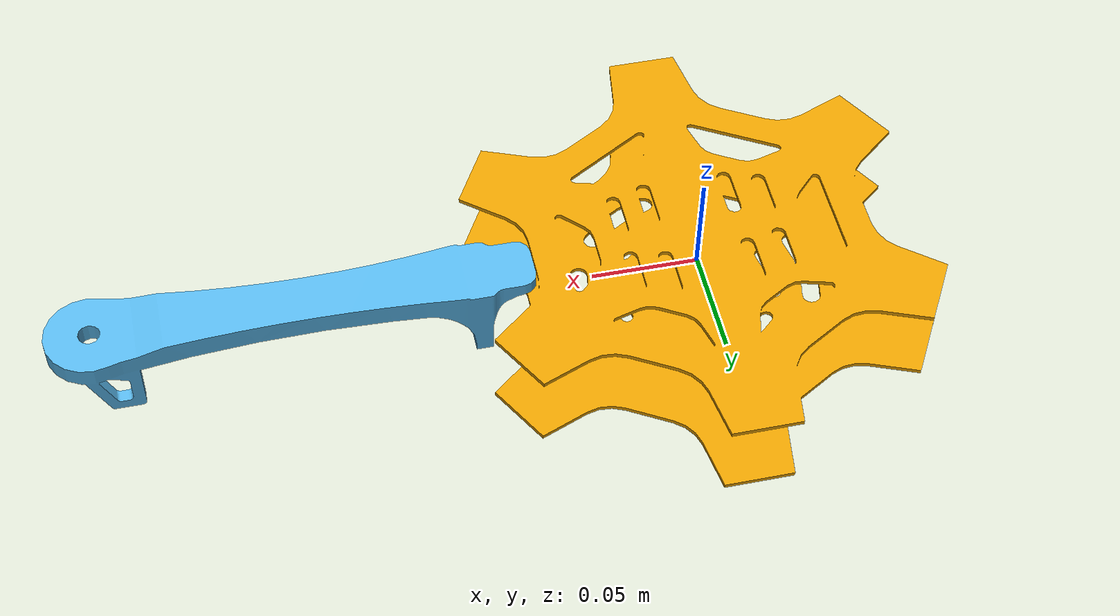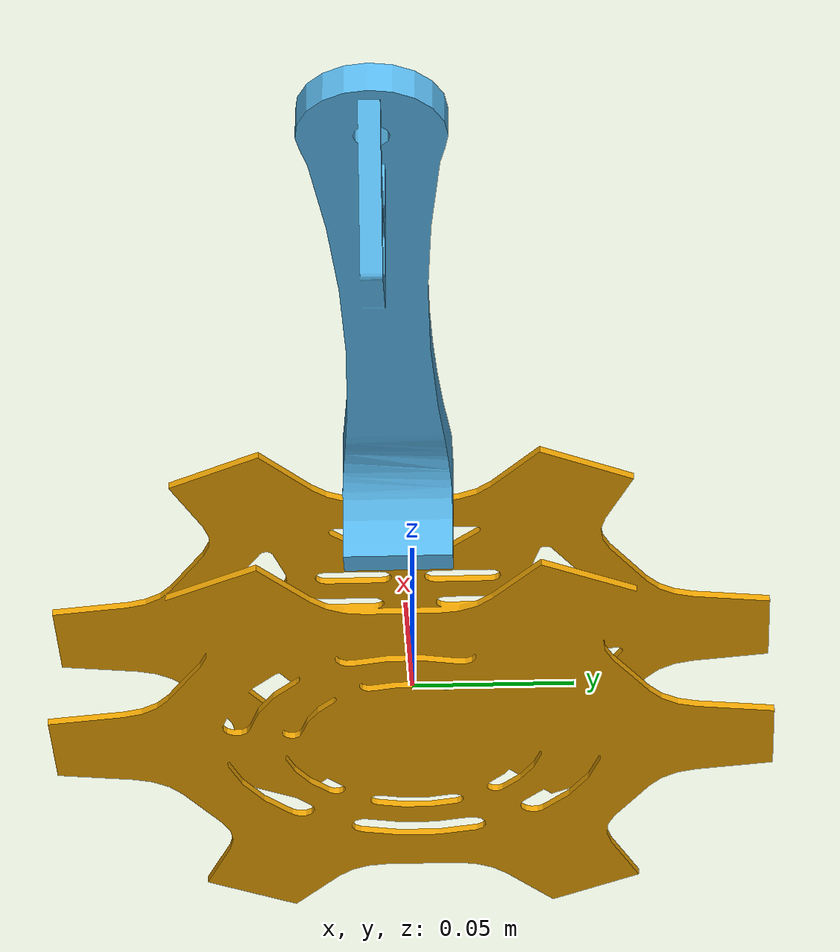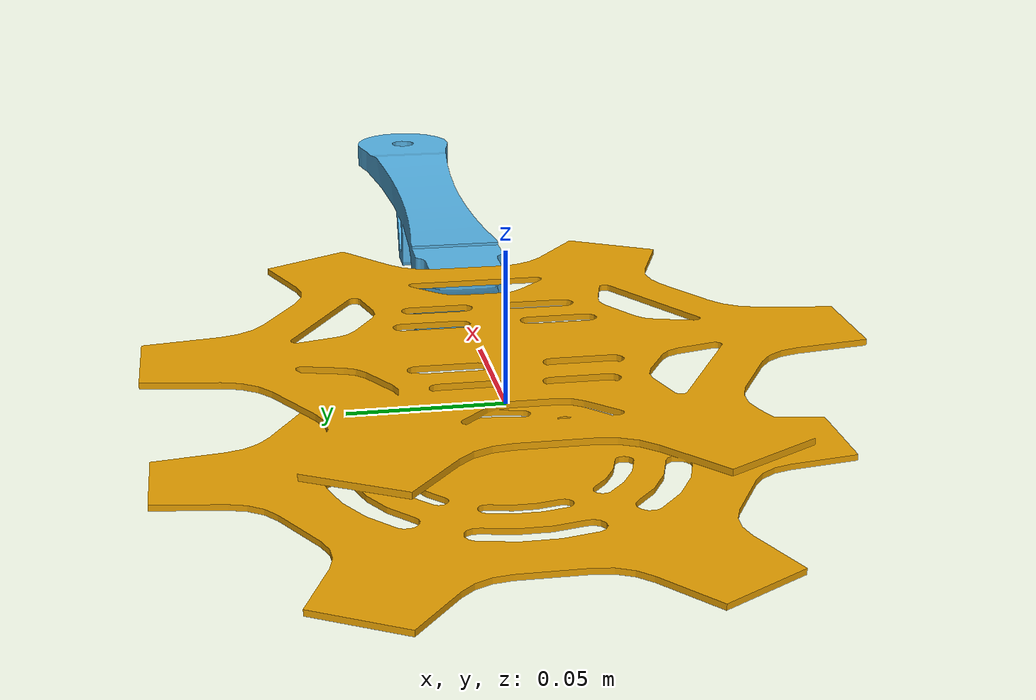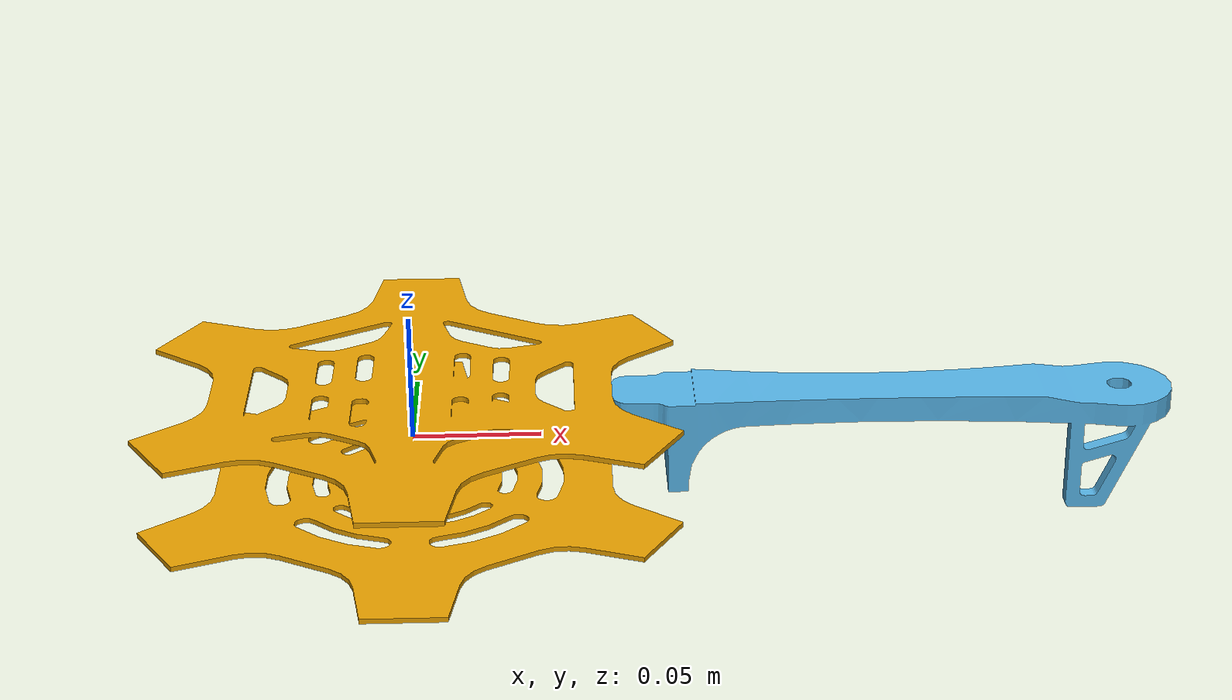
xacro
<?xml version="1.0"?>
<robot xmlns:xacro="http://ros.org/wiki/xacro" name="copter_ray">

<!-- Build ray -->

<link name="frame">
		<collision>
			<origin	xyz="0 0 0" rpy="0 0 0" />
			<geometry>
				<cylinder radius="0.115" length="0.045"/>
			</geometry>
		</collision>
    		<visual>
      			<origin	xyz="0 0 0" rpy="0 0 0" />
      			<geometry>
				<mesh filename="package://copter_description/meshes/stl/frame.STL" />
      			</geometry>
    		</visual>
		<inertial>
			<mass value="1.9"/>
			<inertia 	ixx="0" ixy="0" ixz="0"
					iyy="0" iyz="0"
					izz="0"/>
		</inertial>
	</link>

  	<joint name="ray_joint" type="revolute">
    		<origin xyz="0 0 0" rpy="0 0 0" />
    		<parent link="frame" />
    		<child link="arm" />
		<limit lower="0" upper="0" effort="0" velocity="0" />
  	</joint>

    	<link name="arm">
		<collision>
			<origin	xyz="0.2 0 -0.008" rpy="0 0 0" />
			<geometry>
				<box size="0.19 0.035 0.055"/>
			</geometry>
		</collision>
    		<visual>
      			<origin	xyz="0.11 0 0" rpy="0 0 0" />
      			<geometry>
				<mesh filename="package://copter_description/meshes/stl/arm.STL" />
      			</geometry>
    		</visual>
		<inertial>
			<mass value="0.08"/>
			<inertia 	ixx="0" ixy="0" ixz="0"
					iyy="0" iyz="0"
					izz="0"/>
		</inertial>
	</link>

</robot>
